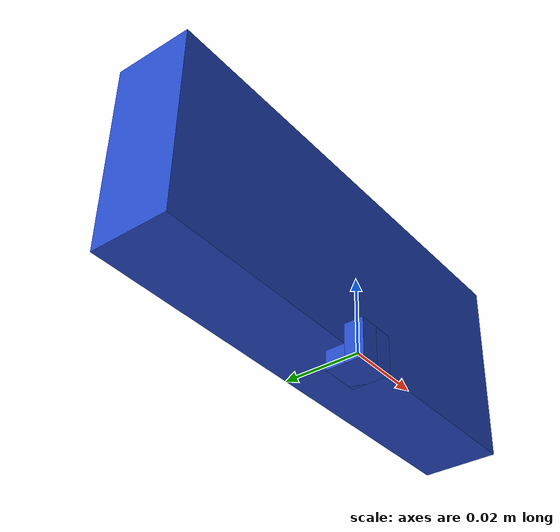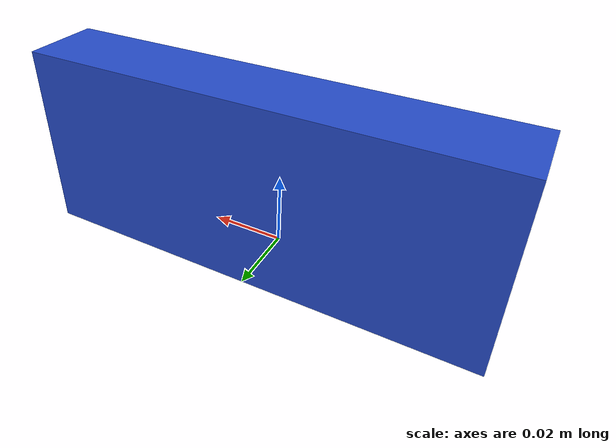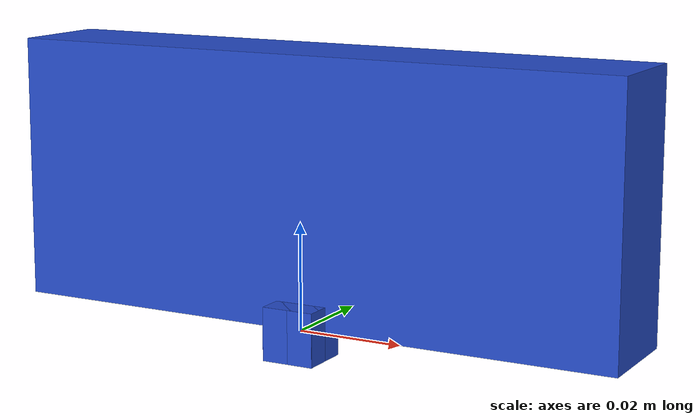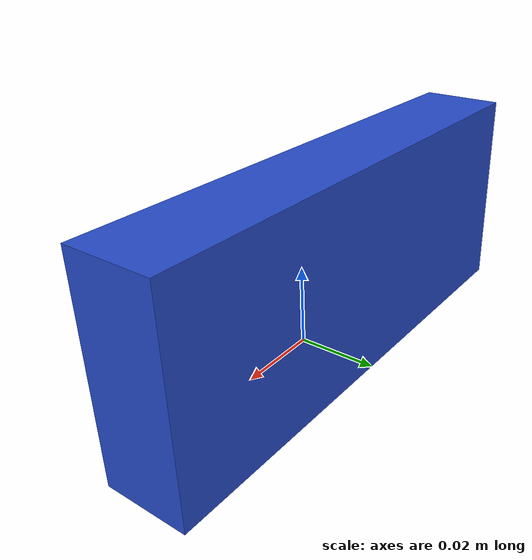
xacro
<?xml version="1.0" ?>
<robot xmlns:xacro="http://ros.org/wiki/xacro"
       name="ur5" >
 <xacro:include filename="$(find ur_description)/urdf/common.xacro" />
<xacro:include filename="$(find ur_description)/urdf/common.gazebo.xacro" />
<xacro:include filename="$(find ur_description)/urdf/sensors/head_sensor_package.urdf.xacro" />

<link name="world" />

<joint name="world_joint" type="continuous">
  <parent link="world" />
  <child link = "head_plate_frame" />
  <origin xyz="0.0 0.0 0.0" rpy="0.0 0.0 1.57" />
</joint>

<link name="head_plate_frame">

  <inertial>
    <mass value="10.00" />
    <origin xyz="0 0 0" rpy="0 0 0" />
    <inertia ixx="0.001"  ixy="0.0"  ixz="0.0"
             iyy="0.001"  iyz="0.0"
             izz="0.001" />
  </inertial>

  <visual>
    <origin xyz="0 0 0" rpy="0 0 0" />
    <geometry>
      <box size="0.01 0.01 0.01" />
    </geometry>

    <material name="Blue" />
  </visual>

  <collision>
    <origin xyz="0 0 0" rpy="0 0 0" />
    <geometry>
      <box size="0.01 0.01 0.01" />
    </geometry>
  </collision>
</link>

<xacro:pr2_head_sensor_package_v0 name="sensor_mount" hd_frame_name="high_def"
       hd_camera_name="prosilica"
       stereo_name="double_stereo"
       parent="head_plate_frame">
  <origin xyz="0.0 0.0 0.0" rpy="0 0 3.14" />
</xacro:pr2_head_sensor_package_v0>

</robot>

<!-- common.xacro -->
<robot>

  <property name="M_PI" value="3.1415926535897931" />
  <property name="VELOCITY_LIMIT_SCALE" value="0.6" />

  <!-- Gear Ratio Corrections: Divide transmission reductions by these factors (Nominally 1)-->
  <property name="cal_r_shoulder_pan_gearing"   value="1.0" />
  <property name="cal_r_shoulder_lift_gearing"  value="1.0" />
  <property name="cal_r_upper_arm_roll_gearing" value="1.0" />

  <!-- ********** Right Arm ********** -->
  <!-- Flag offsets: Add to the optical flag locations (Nominally 0) -->
  <property name="cal_r_shoulder_pan_flag"   value="0.0" />
  <property name="cal_r_shoulder_lift_flag"  value="0.0" />
  <property name="cal_r_upper_arm_roll_flag" value="0.0" />
  <property name="cal_r_elbow_flex_flag"     value="0.0" />
  <property name="cal_r_forearm_roll_flag"   value="0.0" />
  <property name="cal_r_wrist_flex_flag"     value="0.0" />
  <property name="cal_r_wrist_roll_flag"     value="0.0" />

  <!-- ********** Head ********** -->
  <!-- Head Location: Add to the transform from torso to head_pan_link (Nominally 0) -->
  <property name="cal_head_x" value="0.0" />
  <property name="cal_head_y" value="0.0" />
  <property name="cal_head_z" value="0.0" />
  <property name="cal_head_roll" value="0.0" />
  <property name="cal_head_pitch" value="0.0" />
  <property name="cal_head_yaw" value="0.0" />

  <!-- Flag Offsets -->
  <property name="cal_head_pan_flag"  value="0.0" />
  <property name="cal_head_tilt_flag" value="0.0" />

  <property name="cal_head_pan_flag" value="0.0"/>
  <property name="cal_head_tilt_flag" value="0.0"/>

  <!-- Casters -->
  <property name="cal_caster_fl" value="0.0" />
  <property name="cal_caster_fr" value="0.0" />
  <property name="cal_caster_bl" value="0.0" />
  <property name="cal_caster_br" value="0.0" />

  <!-- Stereo Camera Location (Nominally 0) -->
  <property name="cal_stereo_x" value="0.0" />
  <property name="cal_stereo_y" value="0.0" />
  <property name="cal_stereo_z" value="0.0" />
  <property name="cal_stereo_roll" value="0.0" />
  <property name="cal_stereo_pitch" value="0.0" />
  <property name="cal_stereo_yaw" value="0.0" />

  <!-- Kinect Camera Location (Nominally 0) -->
  <property name="cal_kinect_x" value="0.0" />
  <property name="cal_kinect_y" value="0.0" />
  <property name="cal_kinect_z" value="0.0" />
  <property name="cal_kinect_roll" value="0.0" />
  <property name="cal_kinect_pitch" value="0.0" />
  <property name="cal_kinect_yaw" value="0.0" />

  <!-- HighDef Camera Location (Nominally 0) -->
  <property name="cal_high_def_x" value="0.0" />
  <property name="cal_high_def_y" value="0.0" />
  <property name="cal_high_def_z" value="0.0" />
  <property name="cal_high_def_roll" value="0.0" />
  <property name="cal_high_def_pitch" value="0.0" />
  <property name="cal_high_def_yaw" value="0.0" />

  <!-- Throwing in left arm constants to appease the xacro parser -->
  <property name="cal_l_shoulder_pan_flag" value="0.000000" />
  <property name="cal_l_wrist_roll_flag" value="0.0" />
</robot>

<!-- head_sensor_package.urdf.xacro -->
<robot xmlns:sensor="http://playerstage.sourceforge.net/gazebo/xmlschema/#sensor"
       xmlns:controller="http://playerstage.sourceforge.net/gazebo/xmlschema/#controller"
       xmlns:interface="http://playerstage.sourceforge.net/gazebo/xmlschema/#interface"
       xmlns:xacro="http://ros.org/wiki/xacro">

  <!-- This urdf macro defines following sensors:
       prosilica
       double stereo camera
  -->
  <xacro:include filename="$(find ur_description)/urdf/sensors/head_sensor_package.gazebo.xacro" />
  <xacro:include filename="$(find ur_description)/urdf/sensors/double_stereo_camera.urdf.xacro" />

  <!-- Made by Kevin for A2 sensor package -->
  <!-- Origin is center mount screw on sensor plate mount -->
  <!-- When mounted properly, should have same origin as head plate frame -->
  <xacro:macro name="pr2_head_sensor_package_v0" params="name hd_frame_name hd_camera_name stereo_name parent *origin">
    <joint name="${name}_frame_joint" type="fixed">
      <insert_block name="origin" />
      <parent link="${parent}"/>
      <child link="${name}_link"/>
    </joint>
    <link name="${name}_link" >

      <inertial>
        <!-- Needs verification with CAD -->
        <mass value="0.05" />
        <origin xyz="0 0 0" rpy="0 0 0" />
        <inertia ixx="0.001" ixy="0.0" ixz="0.0"
                 iyy="0.001" iyz="0.0" izz="0.01" />
      </inertial>

      <!-- Should probably get real visuals here at some point -->
      <visual>
        <origin xyz="0 0 0" rpy="0 0 0" />
        <geometry>
          <box size="0.01 0.01 0.01" />
        </geometry>

        <material name="Blue" />
      </visual>

    </link>

    <!-- Prosilica Camera -->

    <!-- construct wide and narrow double stereo camera -->
    <xacro:double_stereo_camera_v0 name="${stereo_name}" parent="${name}_link" >
      <origin xyz="0.0 0.0 0.0" rpy="0 0 0" />
    </xacro:double_stereo_camera_v0>

    <!-- extensions -->
    <xacro:pr2_head_sensor_package_gazebo_v0 name="${name}" />

  </xacro:macro>

</robot>

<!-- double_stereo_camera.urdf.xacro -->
<robot xmlns:sensor="http://playerstage.sourceforge.net/gazebo/xmlschema/#sensor"
       xmlns:controller="http://playerstage.sourceforge.net/gazebo/xmlschema/#controller"
       xmlns:interface="http://playerstage.sourceforge.net/gazebo/xmlschema/#interface"
       xmlns:xacro="http://ros.org/wiki/xacro">

  <xacro:include filename="$(find ur_description)/urdf/sensors/double_stereo_camera.gazebo.xacro" />
  <xacro:include filename="$(find ur_description)/urdf/sensors/stereo_camera.urdf.xacro" />

  <property name="stereo_size_x" value="0.02" />
  <property name="stereo_size_y" value="0.12" />
  <property name="stereo_size_z" value="0.05" />
  <property name="stereo_center_box_center_offset_x" value="-0.01" />
  <property name="stereo_center_box_center_offset_z" value="0.025" />

  <!-- Made by Kevin for double stereo camera for PR-2 Beta. -->
  <!-- Needs calibration verification, and CAD check. -->
  <xacro:macro name="double_stereo_camera_v0" params="name parent *origin">
    <!-- Define link to stereo cameras, set origin relative to that -->
    <joint name="${name}_frame_joint" type="fixed">
      <insert_block name="origin" />
      <parent link="${parent}"/>
      <child link="${name}_link"/>
    </joint>
    <link name="${name}_link">

      <inertial>
        <!-- Needs verification with CAD -->
        <mass value="0.1" />
        <origin xyz="0 0 0" rpy="0 0 0" />
        <inertia ixx="0.001" ixy="0.0" ixz="0.0"
                 iyy="0.001" iyz="0.0" izz="0.01" />
      </inertial>

      <!-- Should probably get real visuals here at some point -->
      <visual>
        <origin xyz="${stereo_center_box_center_offset_x} 0 ${stereo_center_box_center_offset_z}" rpy="0 0 0" />
        <geometry>
          <box size="${stereo_size_x} ${stereo_size_y} ${stereo_size_z}" />
        </geometry>
        <material name="Blue" />
      </visual>

    </link>

    <!-- Wide camera is on robot right (hca1), narrow on left (hca2)? -->
    <!-- 15mm offset from center needs check with CAD -->
    <xacro:stereo_camera_v0 parent="${name}_link" name="wide_stereo" focal_length="320.000105" hfov="90" image_format="BAYER_BGGR8" image_width="640" image_height="480" >
      <origin xyz="0.045 ${0.045-0.015} 0.0501" rpy="0.0   0.0   0.0" />
    </xacro:stereo_camera_v0>
    <xacro:stereo_camera_v0 parent="${name}_link" name="narrow_stereo" focal_length="772.548518" hfov="45" image_format="L8" image_width="640" image_height="480" >
      <origin xyz="0.045 ${0.045+0.015} 0.0501" rpy="0.0   0.0   0.0" />
    </xacro:stereo_camera_v0>

    <!-- extensions -->
    <xacro:double_stereo_camera_gazebo_v0 name="${name}" />

  </xacro:macro>

</robot>

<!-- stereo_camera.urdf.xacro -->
<robot xmlns:sensor="http://playerstage.sourceforge.net/gazebo/xmlschema/#sensor"
       xmlns:controller="http://playerstage.sourceforge.net/gazebo/xmlschema/#controller"
       xmlns:interface="http://playerstage.sourceforge.net/gazebo/xmlschema/#interface"
       xmlns:xacro="http://ros.org/wiki/xacro">

  <!-- stereo camera macro uses wge100_camera macros -->
  <xacro:include filename="$(find ur_description)/urdf/sensors/wge100_camera.urdf.xacro" />

  <xacro:include filename="$(find ur_description)/urdf/sensors/stereo_camera.gazebo.xacro" />

  <property name="stereo_dx" value="0.00" />
  <property name="stereo_dy" value="-0.09" /> <!-- +y to the left -->
  <property name="stereo_dz" value="0.00" />
  <property name="stereo_rx" value="0.00" />
  <property name="stereo_ry" value="0.00" />
  <property name="stereo_rz" value="0.00" />

  <!-- this macro is used for creating wide and narrow double stereo camera links -->
  <xacro:macro name="stereo_camera_v0" params="name parent focal_length hfov image_format image_width image_height *origin">

    <joint name="${name}_frame_joint" type="fixed">
      <insert_block name="origin" />
      <parent link="${parent}"/>
      <child link="${name}_link"/>
    </joint>
    <!-- camera link is at center of the optical frame, but in x-forward notation -->
    <link name="${name}_link">

      <inertial>
        <mass value="0.1" />
        <origin xyz="0 0 0" rpy="0 0 0" />
        <inertia ixx="0.01"  ixy="0"  ixz="0" iyy="0.01"  iyz="0"  izz="0.01" /> <!-- this inertia is made up for now. -->
      </inertial>

    </link>

    <!-- attach optical frame to the camera link -->
    <joint name="${name}_optical_frame_joint" type="fixed">
      <origin xyz="0 0 0" rpy="${-M_PI/2} 0.0 ${-M_PI/2}" /> <!-- rotate frame from x-forward to z-forward camera coords -->
      <parent link="${name}_link"/>
      <child link="${name}_optical_frame"/>
    </joint>
    <!-- optical frame for the stereo camera, with z-forward notation, this is the frame stereo camera images users should refer to -->
    <link name="${name}_optical_frame" type="camera"/>

    <!-- stereo left camera -->
    <xacro:wge100_camera_v0 name="${name}_l_stereo_camera" camera_name="${name}/left" image_format="${image_format}" image_topic_name="image_raw"
                            camera_info_topic_name="camera_info" parent="${name}_link"
                            hfov="${hfov}" focal_length="${focal_length}"
                            frame_id="${name}_optical_frame" hack_baseline="0"
                            image_width="${image_width}" image_height="${image_height}">
      <origin xyz="0 0 0" rpy="0 0 0" />
    </xacro:wge100_camera_v0>

    <!-- stereo right camera -->
    <xacro:wge100_camera_v0 name="${name}_r_stereo_camera" camera_name="${name}/right" image_format="${image_format}" image_topic_name="image_raw"
                            camera_info_topic_name="camera_info" parent="${name}_l_stereo_camera_frame"
                            hfov="${hfov}" focal_length="${focal_length}"
                            frame_id="${name}_optical_frame" hack_baseline="${-stereo_dy}"
                            image_width="${image_width}" image_height="${image_height}">
      <origin xyz="${stereo_dx} ${stereo_dy} ${stereo_dz}" rpy="${stereo_rx} ${stereo_ry} ${stereo_rz}" />
    </xacro:wge100_camera_v0>

    <!-- extensions -->
    <xacro:stereo_camera_gazebo_v0 name="${name}" focal_length="${focal_length}" hfov="${hfov}"
                                   image_width="${image_width}" image_height="${image_height}"/>

  </xacro:macro>
</robot>

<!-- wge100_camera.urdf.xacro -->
<!-- XML namespaces -->
<robot xmlns:sensor="http://playerstage.sourceforge.net/gazebo/xmlschema/#sensor"
       xmlns:controller="http://playerstage.sourceforge.net/gazebo/xmlschema/#controller"
       xmlns:interface="http://playerstage.sourceforge.net/gazebo/xmlschema/#interface"
       xmlns:xacro="http://ros.org/wiki/xacro">

  <xacro:include filename="$(find ur_description)/urdf/sensors/wge100_camera.gazebo.xacro" />

  <xacro:macro name="wge100_camera_v0" params="name camera_name image_format image_topic_name camera_info_topic_name parent hfov focal_length frame_id hack_baseline image_width image_height *origin">

    <joint name="${name}_frame_joint" type="fixed">
      <insert_block name="origin" />
      <parent link="${parent}"/>
      <child link="${name}_frame"/>
    </joint>
    <link name="${name}_frame">

      <inertial>
        <mass value="0.01" />
        <origin xyz="0 0 0" />
        <inertia ixx="0.001"  ixy="0.0"  ixz="0.0"
                 iyy="0.001"  iyz="0.0"
                 izz="0.001" />
      </inertial>

    </link>

    <joint name="${name}_optical_frame_joint" type="fixed">
      <origin xyz="0 0 0" rpy="${-M_PI/2} 0.0 ${-M_PI/2}" />
      <parent link="${name}_frame" />
      <child link="${name}_optical_frame"/>
    </joint>
    <link name="${name}_optical_frame"/>

    <!-- extensions -->
    <xacro:wge100_camera_gazebo_v0 name="${name}" camera_name="${camera_name}" image_format="${image_format}" image_topic_name="${image_topic_name}"
                                   camera_info_topic_name="${camera_info_topic_name}"
                                   hfov="${hfov}" focal_length="${focal_length}"
                                   frame_id="${frame_id}" hack_baseline="${hack_baseline}"
                                   image_width="${image_width}" image_height="${image_height}"/>

  </xacro:macro>

</robot>
